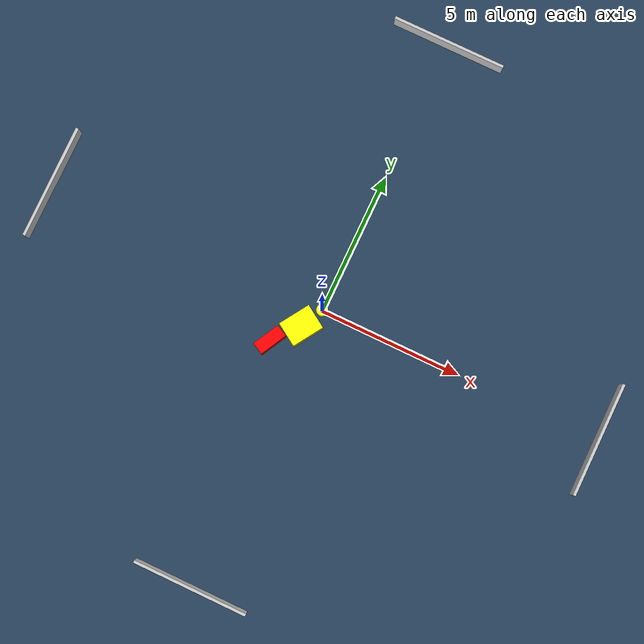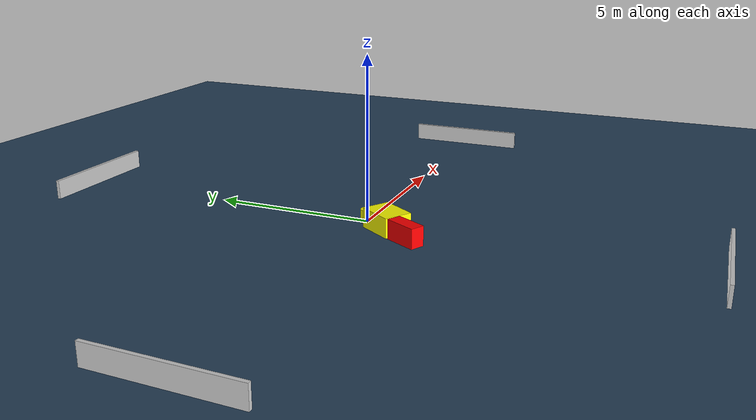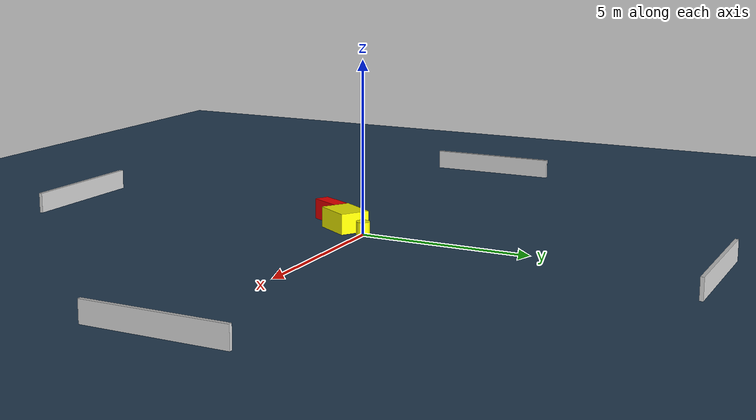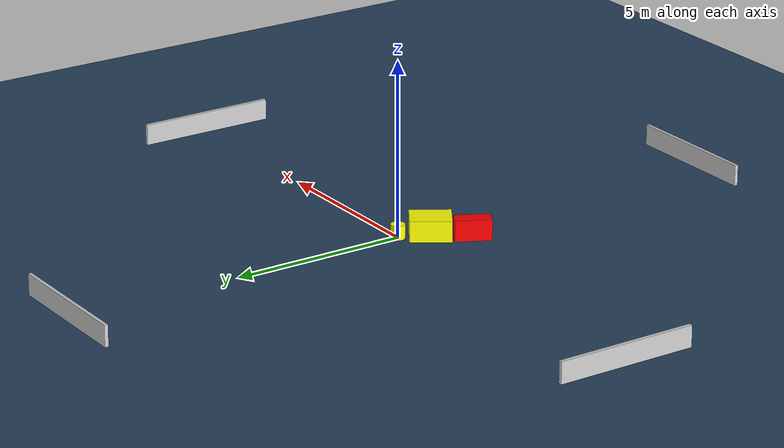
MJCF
<?xml version="1.0" ?>
<mujoco model="generated_environment">
  <option timestep="0.01" integrator="RK4" cone="elliptic"/>
  <default>
    <geom density="1"/>
  </default>
  <asset>
    <texture builtin="gradient" height="3072" name="skybox" rgb1="0.3 0.5 0.7" rgb2="0 0 0" type="skybox" width="512"/>
    <texture builtin="checker" height="300" name="groundplane" rgb1="0.2 0.3 0.4" rgb2="0.1 0.2 0.3" type="2d" width="300"/>
    <material name="groundplane" reflectance="0.2" texrepeat="5 5" texture="groundplane"/>
  </asset>
  <worldbody>
    <light dir="0 0 -1" directional="true" pos="0 0 1.5"/>
    <geom condim="3" friction="0.5 0.005 0.001" material="groundplane" name="floor" pos="0 0 0" size="0 0 0.05" type="plane"/>
    <body name="walls">
      <geom name="wall_1" condim="4" pos="-10.0 0.0 0.3" rgba="0.800000011920929 0.800000011920929 0.800000011920929 1.0" size="0.05 2.0 0.3" type="box"/>
      <geom name="wall_2" condim="4" pos="10.0 0.0 0.3" rgba="0.800000011920929 0.800000011920929 0.800000011920929 1.0" size="0.05 2.0 0.3" type="box"/>
      <geom name="wall_3" condim="4" pos="0.0 -10.0 0.3" rgba="0.800000011920929 0.800000011920929 0.800000011920929 1.0" size="2.0 0.05 0.3" type="box"/>
      <geom name="wall_4" condim="4" pos="0.0 10.0 0.3" rgba="0.800000011920929 0.800000011920929 0.800000011920929 1.0" size="2.0 0.05 0.3" type="box"/>
    </body>
    <body name="robot">
      <joint name="joint_x" type="slide" pos="0 0 0" axis="1 0 0"/>
      <joint name="joint_y" type="slide" pos="0 0 0" axis="0 1 0"/>
      <geom name="robot" type="cylinder" pos="0.0 0.0 0.2" size="0.2 0.2 0.0" mass="5.0" friction="1.0 0.005 0.0001" condim="4" rgba="1.0 1.0 0.0 1.0"/>
    </body>
    <body name="obstacle_1_movable">
      <geom name="obstacle_1_movable" condim="4" pos="-0.3997610953033366 -0.7833072550982002 0.3" euler="0 0 327.41217235148525" friction="0.0 0.005 0.001" rgba="1.0 1.0 0.0 1.0" size="0.4429299445538919 0.5762479763304469 0.3" type="box" mass="0.1"/>
      <joint type="free"/>
    </body>
    <body name="obstacle_2_static">
      <geom name="obstacle_2_static" condim="4" pos="-1.1332618369964464 -1.644191149618017 0.3" euler="0 0 152.10022656434148" friction="0.0 0.005 0.001" rgba="1.0 0.0 0.0 1.0" size="0.21929593087250374 0.5034385503830743 0.3" type="box"/>
    </body>
  </worldbody>
  <actuator>
    <motor name="actuator_x" joint="joint_x" gear="1" ctrlrange="-1 1"/>
    <motor name="actuator_y" joint="joint_y" gear="1" ctrlrange="-1 1"/>
  </actuator>
</mujoco>
